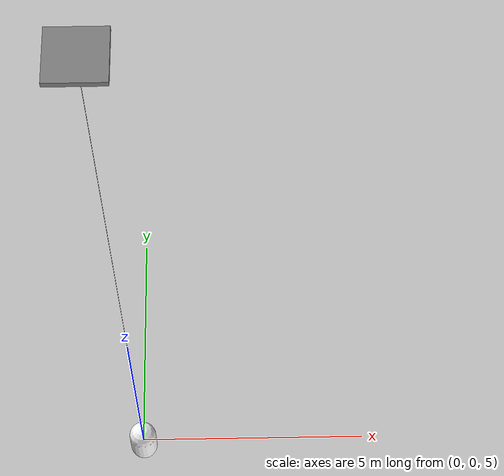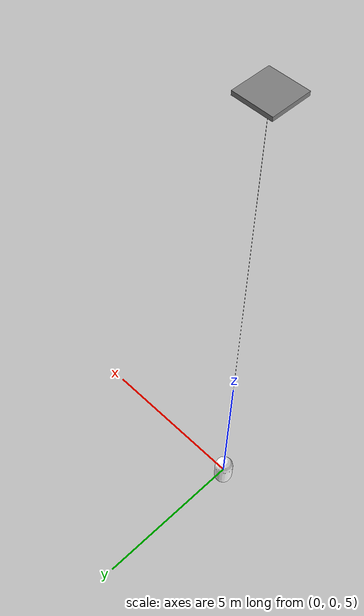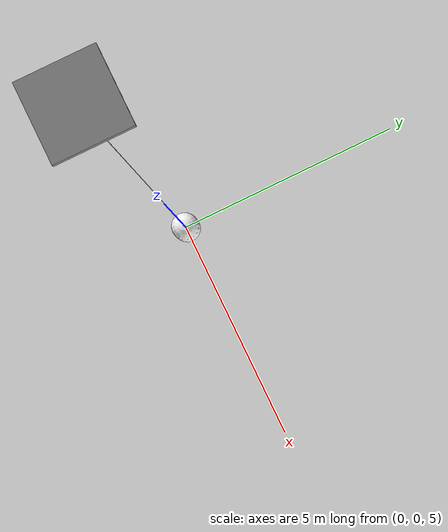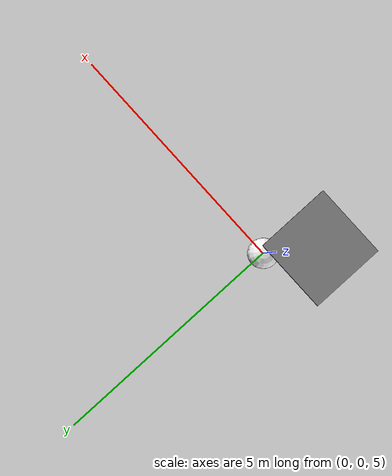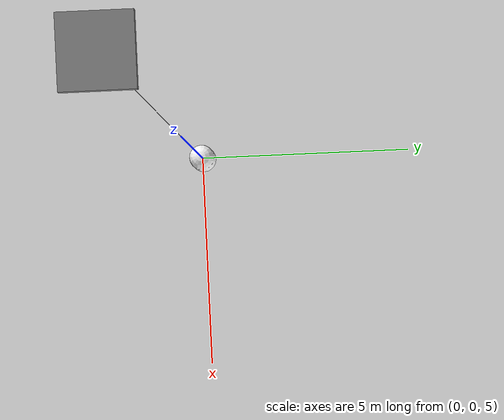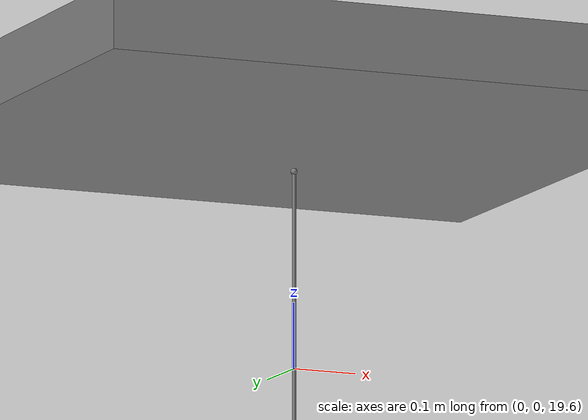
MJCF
<mujoco> <!-- Simulator options -->
    <option timestep="0.01" iterations="1" ls_iterations="5" integrator="RK4" gravity="0 0 0 " /> <!--
    Defaults -->
    <default> <!-- No contact, everything is grey-->
        <geom rgba="0.5 0.5 0.5 1" conaffinity="0" /> <!-- Note that joint damping has a big impact
        on sim stability, esp. with the tendon -->
        <joint damping="1e-4" />
    </default> <!-- The robot -->
    <worldbody> <!-- 大车机构 -->
        <body name="AxisX_Frame" pos="0 0 20">
            <joint name="AxisX" type="slide" axis="1 0 0" />
            <geom type="box" size="0.5 0.5 0.05" mass="1" /> <!--小车机构 -->
            <body name="AxisY_Frame" pos="0 0 0">
                <joint name="AxisY" type="slide" axis="0 1 0" />
                <geom type="box" size="0.5 0.5 0.05" mass="1" rgba="0.92 0.25 0.25 1" /> <!-- The
                site for attaching the cable -->
                <site name="playload_top" pos="0 0 -0.1" />
            </body>
        </body> <!--
        The payload -->
        <body name="payload" pos="0.0 0.0 5.0">
            <joint type="free" />
            <geom type="capsule" size=".3 0.3" rgba="0.99 0.99 0.99 1.0" /> <!-- Site to attach the
            top of the payload -->
            <site name="payload_end" pos="0 0 0.1" />
        </body>
    </worldbody> <!-- The cable
    holding the payload -->
    <tendon>
        <spatial name="cable" damping="0.0">
            <site site="playload_top" />
            <site site="payload_end" />
        </spatial>
    </tendon> <!-- 小车执行器 -->
    <actuator>
        <position name="posX" joint="AxisX" ctrlrange="-10 10" kp="10" dampratio="1.0" />
        <position name="posY" joint="AxisY" ctrlrange="-10 10" kp="10" dampratio="1.0" />
        <position name="posZ" tendon="cable" kp="10" dampratio="1.0" forcerange="-10 0"
            ctrlrange="-12 0" />
    </actuator>
</mujoco>
